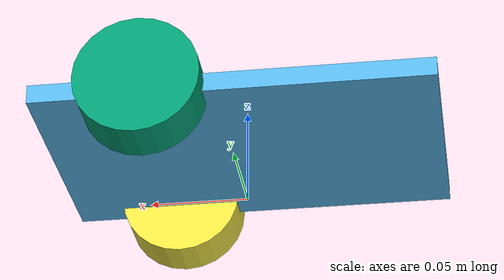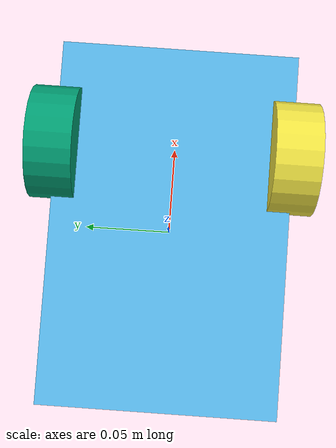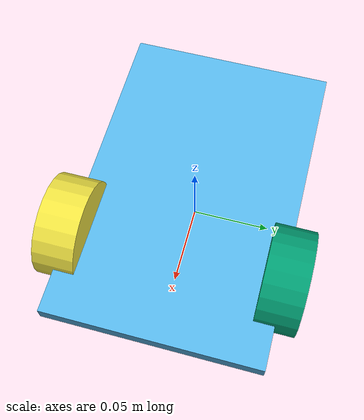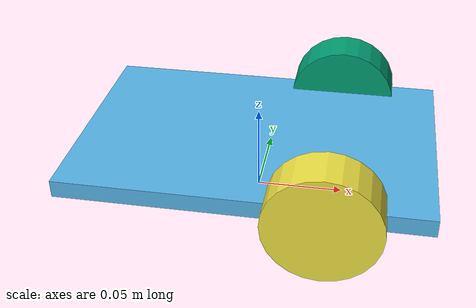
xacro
<?xml version="1.0"?>
<robot name="minnie" xmlns:xacro="http://www.ros.org/wiki/xacro">

  <link name="base_footprint" />

  <link name="base_link">
    <visual>
      <geometry>
        <box size="0.2032 0.13335 0.01" />
      </geometry>
    </visual>
    <collision>
      <geometry>
        <box size="0.2032 0.13335 0.01" />
      </geometry>
    </collision>
  </link>

  <joint name="base_link_joint" type="fixed">
    <origin xyz="0 0 0.03175" rpy="0 0 0" />
    <parent link="base_footprint"/>
    <child link="base_link" />
  </joint>

  <link name="wheel_left_link">
    <visual>
      <origin rpy="0 1.5708 0" />
      <geometry>
        <cylinder radius="0.03175" length="0.0254" />
      </geometry>
    </visual>
    <collision>
      <origin rpy="0 1.5708 0" />
      <geometry>
        <cylinder radius="0.03175" length="0.0254" />
      </geometry>
    </collision>
  </link>

  <joint name="wheel_left_joint" type="continuous">
    <origin xyz="0.04445 0.0667 0" rpy="0 0 1.5708" />
    <parent link="base_link"/>
    <child link="wheel_left_link" />
  </joint>

  <link name="wheel_right_link">
    <visual>
      <origin rpy="0 1.5708 0" />
      <geometry>
        <cylinder radius="0.03175" length="0.0254" />
      </geometry>
    </visual>
    <collision>
      <origin rpy="0 1.5708 0" />
      <geometry>
        <cylinder radius="0.03175" length="0.0254" />
      </geometry>
    </collision>
  </link>

  <joint name="wheel_right_joint" type="continuous">
    <origin xyz="0.04445 -0.0667 0" rpy="0 0 1.5708" />
    <parent link="base_link"/>
    <child link="wheel_right_link" />
  </joint>

</robot>
